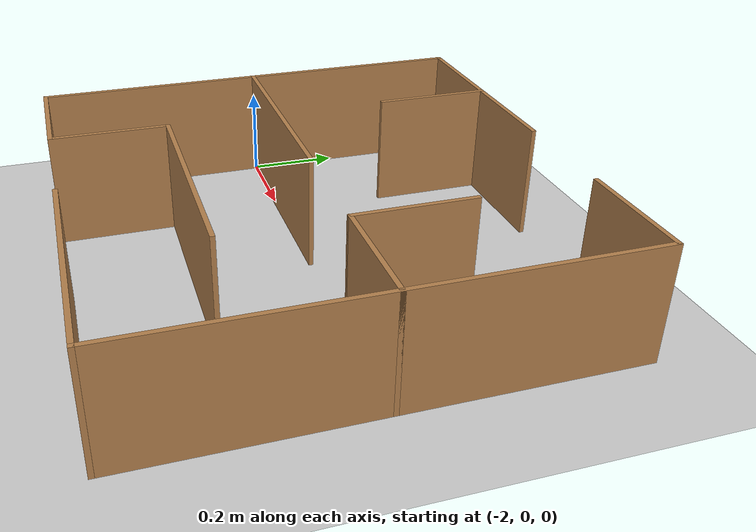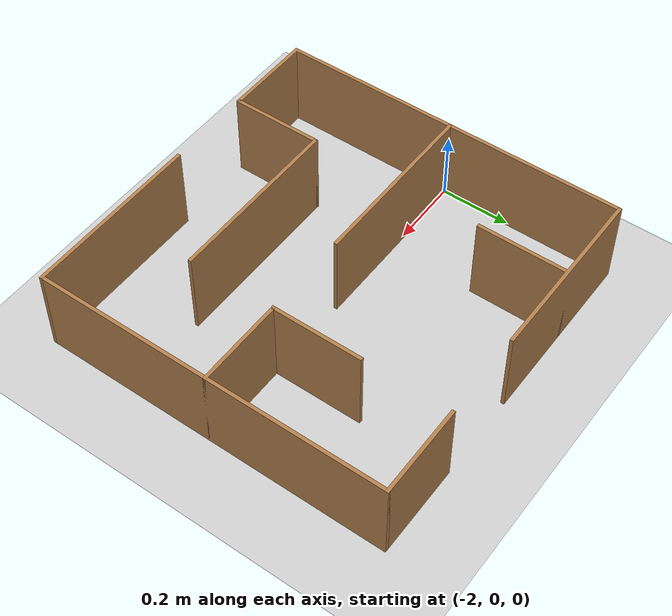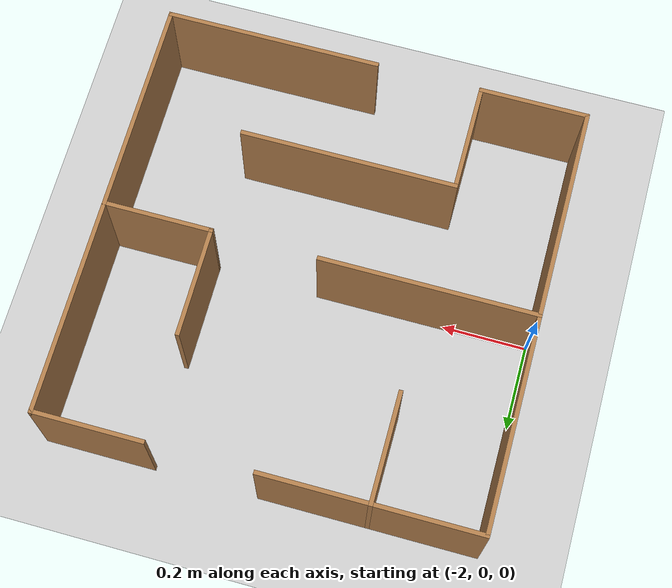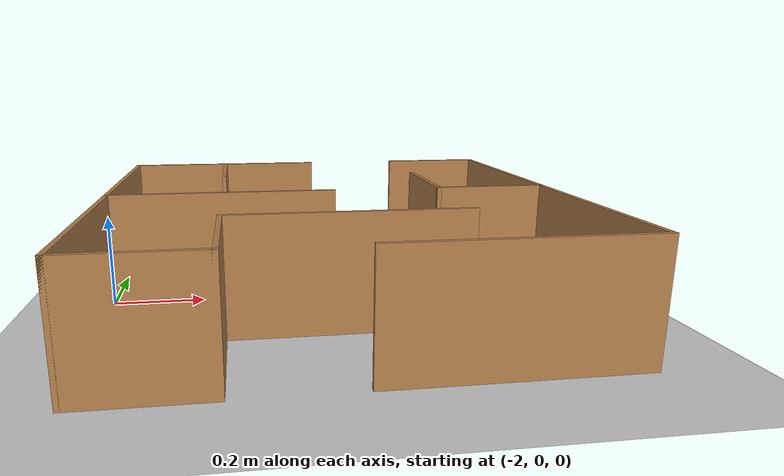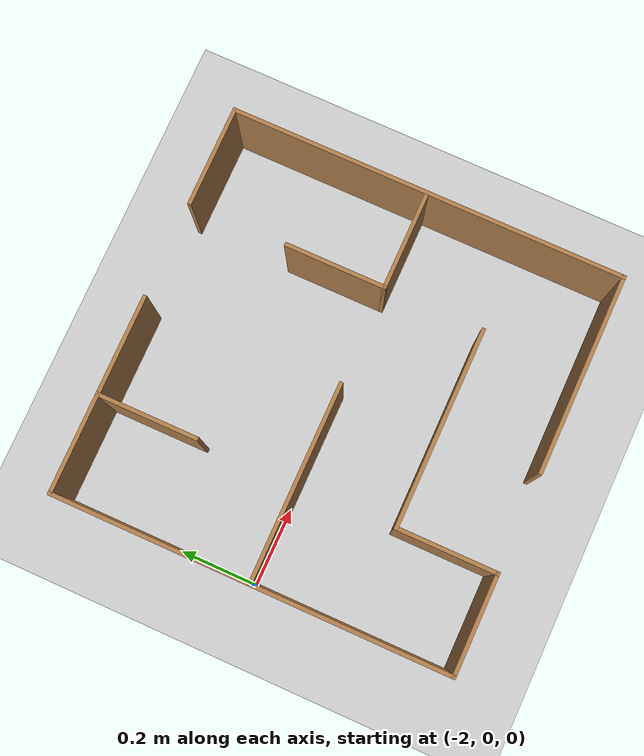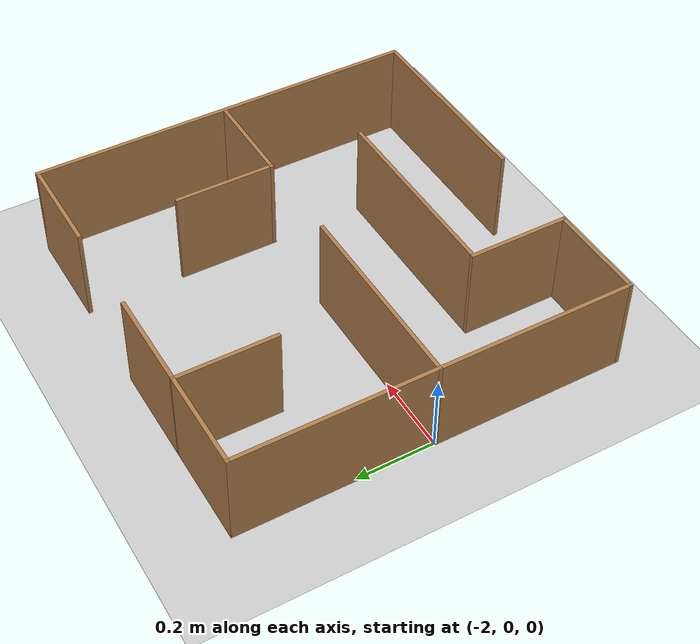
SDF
<?xml version="1.0"?>
<sdf version="1.6">
  <world name="default">

    <include>
      <uri>model://ground_plane</uri>
    </include>

    <include>
      <uri>model://sun</uri>
    </include>

    <scene>
      <shadows>false</shadows>
    </scene>

    <gui fullscreen='0'>
      <camera name='user_camera'>
        <pose frame=''>0.319654 -0.235002 9.29441 0 1.5138 0.009599</pose>
        <view_controller>orbit</view_controller>
        <projection_type>perspective</projection_type>
      </camera>
    </gui>

    <physics type="ode">
      <real_time_update_rate>1000.0</real_time_update_rate>
      <max_step_size>0.001</max_step_size>
      <real_time_factor>1</real_time_factor>
      <ode>
        <solver>
          <type>quick</type>
          <iters>150</iters>
          <precon_iters>0</precon_iters>
          <sor>1.400000</sor>
          <use_dynamic_moi_rescaling>1</use_dynamic_moi_rescaling>
        </solver>
        <constraints>
          <cfm>0.00001</cfm>
          <erp>0.2</erp>
          <contact_max_correcting_vel>2000.000000</contact_max_correcting_vel>
          <contact_surface_layer>0.01000</contact_surface_layer>
        </constraints>
      </ode>
    </physics>

    <model name="maze4x4">
      <static>1</static>
      <include>
        <uri>model://maze4x4</uri>
      </include>
    </model>

  </world>
</sdf>

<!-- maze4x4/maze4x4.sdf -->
<sdf version='1.7'>
  <model name='maze4x4'>
    <pose>-1.0025 0 0 0 -0 0</pose>
    <link name='Wall_1'>
      <collision name='Wall_1_Collision'>
        <geometry>
          <box>
            <size>1.01 0.01 0.25</size>
          </box>
        </geometry>
        <pose>0 0 0.125 0 -0 0</pose>
      </collision>
      <visual name='Wall_1_Visual'>
        <pose>0 0 0.125 0 -0 0</pose>
        <geometry>
          <box>
            <size>1.01 0.01 0.25</size>
          </box>
        </geometry>
        <material>
          <script>
            <uri>file://media/materials/scripts/gazebo.material</uri>
            <name>Gazebo/Wood</name>
          </script>
          <ambient>1 1 1 1</ambient>
        </material>
        <meta>
          <layer>0</layer>
        </meta>
      </visual>
      <pose>-0.9975 0 0 0 -0 1.5708</pose>
    </link>
    <link name='Wall_2'>
      <collision name='Wall_2_Collision'>
        <geometry>
          <box>
            <size>0.51 0.01 0.25</size>
          </box>
        </geometry>
        <pose>0 0 0.125 0 -0 0</pose>
      </collision>
      <visual name='Wall_2_Visual'>
        <pose>0 0 0.125 0 -0 0</pose>
        <geometry>
          <box>
            <size>0.51 0.01 0.25</size>
          </box>
        </geometry>
        <material>
          <script>
            <uri>file://media/materials/scripts/gazebo.material</uri>
            <name>Gazebo/Wood</name>
          </script>
          <ambient>1 1 1 1</ambient>
        </material>
        <meta>
          <layer>0</layer>
        </meta>
      </visual>
      <pose>-0.7475 0.5 0 0 -0 0</pose>
    </link>
    <link name='Wall_3'>
      <collision name='Wall_3_Collision'>
        <geometry>
          <box>
            <size>0.26 0.01 0.25</size>
          </box>
        </geometry>
        <pose>0 0 0.125 0 -0 0</pose>
      </collision>
      <visual name='Wall_3_Visual'>
        <pose>0 0 0.125 0 -0 0</pose>
        <geometry>
          <box>
            <size>0.26 0.01 0.25</size>
          </box>
        </geometry>
        <material>
          <script>
            <uri>file://media/materials/scripts/gazebo.material</uri>
            <name>Gazebo/Wood</name>
          </script>
          <ambient>1 1 1 1</ambient>
        </material>
        <meta>
          <layer>0</layer>
        </meta>
      </visual>
      <pose>-0.7475 0.375 0 0 -0 -1.5708</pose>
    </link>
    <link name='Wall_4'>
      <collision name='Wall_4_Collision'>
        <geometry>
          <box>
            <size>0.26 0.01 0.25</size>
          </box>
        </geometry>
        <pose>0 0 0.125 0 -0 0</pose>
      </collision>
      <visual name='Wall_4_Visual'>
        <pose>0 0 0.125 0 -0 0</pose>
        <geometry>
          <box>
            <size>0.26 0.01 0.25</size>
          </box>
        </geometry>
        <material>
          <script>
            <uri>file://media/materials/scripts/gazebo.material</uri>
            <name>Gazebo/Wood</name>
          </script>
          <ambient>1 1 1 1</ambient>
        </material>
        <meta>
          <layer>0</layer>
        </meta>
      </visual>
      <pose>-0.1225 0.5 0 0 -0 0</pose>
    </link>
    <link name='Wall_17'>
      <collision name='Wall_17_Collision'>
        <geometry>
          <box>
            <size>1.01 0.01 0.25</size>
          </box>
        </geometry>
        <pose>0 0 0.125 0 -0 0</pose>
      </collision>
      <visual name='Wall_17_Visual'>
        <pose>0 0 0.125 0 -0 0</pose>
        <geometry>
          <box>
            <size>1.01 0.01 0.25</size>
          </box>
        </geometry>
        <material>
          <script>
            <uri>file://media/materials/scripts/gazebo.material</uri>
            <name>Gazebo/Wood</name>
          </script>
          <ambient>1 1 1 1</ambient>
        </material>
        <meta>
          <layer>0</layer>
        </meta>
      </visual>
      <pose>0.0025 0 0 0 -0 -1.5708</pose>
    </link>
    <link name='Wall_19'>
      <collision name='Wall_19_Collision'>
        <geometry>
          <box>
            <size>0.51 0.01 0.25</size>
          </box>
        </geometry>
        <pose>0 0 0.125 0 -0 0</pose>
      </collision>
      <visual name='Wall_19_Visual'>
        <pose>0 0 0.125 0 -0 0</pose>
        <geometry>
          <box>
            <size>0.51 0.01 0.25</size>
          </box>
        </geometry>
        <material>
          <script>
            <uri>file://media/materials/scripts/gazebo.material</uri>
            <name>Gazebo/Wood</name>
          </script>
          <ambient>1 1 1 1</ambient>
        </material>
        <meta>
          <layer>0</layer>
        </meta>
      </visual>
      <pose>-0.7475 0 0 0 -0 0</pose>
    </link>
    <link name='Wall_21'>
      <collision name='Wall_21_Collision'>
        <geometry>
          <box>
            <size>0.51 0.01 0.25</size>
          </box>
        </geometry>
        <pose>0 0 0.125 0 -0 0</pose>
      </collision>
      <visual name='Wall_21_Visual'>
        <pose>0 0 0.125 0 -0 0</pose>
        <geometry>
          <box>
            <size>0.51 0.01 0.25</size>
          </box>
        </geometry>
        <material>
          <script>
            <uri>file://media/materials/scripts/gazebo.material</uri>
            <name>Gazebo/Wood</name>
          </script>
          <ambient>1 1 1 1</ambient>
        </material>
        <meta>
          <layer>0</layer>
        </meta>
      </visual>
      <pose>-0.2475 -0.5 0 0 -0 3.14159</pose>
    </link>
    <link name='Wall_23'>
      <collision name='Wall_23_Collision'>
        <geometry>
          <box>
            <size>0.26 0.01 0.25</size>
          </box>
        </geometry>
        <pose>0 0 0.125 0 -0 0</pose>
      </collision>
      <visual name='Wall_23_Visual'>
        <pose>0 0 0.125 0 -0 0</pose>
        <geometry>
          <box>
            <size>0.26 0.01 0.25</size>
          </box>
        </geometry>
        <material>
          <script>
            <uri>file://media/materials/scripts/gazebo.material</uri>
            <name>Gazebo/Wood</name>
          </script>
          <ambient>1 1 1 1</ambient>
        </material>
        <meta>
          <layer>0</layer>
        </meta>
      </visual>
      <pose>-0.1225 0 0 0 -0 3.14159</pose>
    </link>
    <link name='Wall_24'>
      <collision name='Wall_24_Collision'>
        <geometry>
          <box>
            <size>0.01 0.01 0.25</size>
          </box>
        </geometry>
        <pose>0 0 0.125 0 -0 0</pose>
      </collision>
      <visual name='Wall_24_Visual'>
        <pose>0 0 0.125 0 -0 0</pose>
        <geometry>
          <box>
            <size>0.01 0.01 0.25</size>
          </box>
        </geometry>
        <material>
          <script>
            <uri>file://media/materials/scripts/gazebo.material</uri>
            <name>Gazebo/Wood</name>
          </script>
          <ambient>1 1 1 1</ambient>
        </material>
        <meta>
          <layer>0</layer>
        </meta>
      </visual>
      <pose>-0.2475 0 0 0 -0 3.14159</pose>
    </link>
    <link name='Wall_29'>
      <collision name='Wall_29_Collision'>
        <geometry>
          <box>
            <size>0.26 0.01 0.25</size>
          </box>
        </geometry>
        <pose>0 0 0.125 0 -0 0</pose>
      </collision>
      <visual name='Wall_29_Visual'>
        <pose>0 0 0.125 0 -0 0</pose>
        <geometry>
          <box>
            <size>0.26 0.01 0.25</size>
          </box>
        </geometry>
        <material>
          <script>
            <uri>file://media/materials/scripts/gazebo.material</uri>
            <name>Gazebo/Wood</name>
          </script>
          <ambient>1 1 1 1</ambient>
        </material>
        <meta>
          <layer>0</layer>
        </meta>
      </visual>
      <pose>-0.2475 0.125 0 0 -0 1.5708</pose>
    </link>
    <link name='Wall_7'>
      <collision name='Wall_7_Collision'>
        <geometry>
          <box>
            <size>0.26 0.01 0.25</size>
          </box>
        </geometry>
        <pose>0 0 0.125 0 -0 0</pose>
      </collision>
      <visual name='Wall_7_Visual'>
        <pose>0 0 0.125 0 -0 0</pose>
        <geometry>
          <box>
            <size>0.26 0.01 0.25</size>
          </box>
        </geometry>
        <material>
          <script>
            <uri>file://media/materials/scripts/gazebo.material</uri>
            <name>Gazebo/Wood</name>
          </script>
          <ambient>1 1 1 1</ambient>
        </material>
        <meta>
          <layer>0</layer>
        </meta>
      </visual>
      <pose>-0.8725 -0.5 0 0 -0 0</pose>
    </link>
    <link name='Wall_8'>
      <collision name='Wall_8_Collision'>
        <geometry>
          <box>
            <size>0.26 0.01 0.25</size>
          </box>
        </geometry>
        <pose>0 0 0.125 0 -0 0</pose>
      </collision>
      <visual name='Wall_8_Visual'>
        <pose>0 0 0.125 0 -0 0</pose>
        <geometry>
          <box>
            <size>0.26 0.01 0.25</size>
          </box>
        </geometry>
        <material>
          <script>
            <uri>file://media/materials/scripts/gazebo.material</uri>
            <name>Gazebo/Wood</name>
          </script>
          <ambient>1 1 1 1</ambient>
        </material>
        <meta>
          <layer>0</layer>
        </meta>
      </visual>
      <pose>-0.7475 -0.375 0 0 -0 1.5708</pose>
    </link>
    <link name='Wall_9'>
      <collision name='Wall_9_Collision'>
        <geometry>
          <box>
            <size>0.51 0.01 0.25</size>
          </box>
        </geometry>
        <pose>0 0 0.125 0 -0 0</pose>
      </collision>
      <visual name='Wall_9_Visual'>
        <pose>0 0 0.125 0 -0 0</pose>
        <geometry>
          <box>
            <size>0.51 0.01 0.25</size>
          </box>
        </geometry>
        <material>
          <script>
            <uri>file://media/materials/scripts/gazebo.material</uri>
            <name>Gazebo/Wood</name>
          </script>
          <ambient>1 1 1 1</ambient>
        </material>
        <meta>
          <layer>0</layer>
        </meta>
      </visual>
      <pose>-0.4975 -0.25 0 0 -0 0</pose>
    </link>
    <static>1</static>
  </model>
</sdf>
